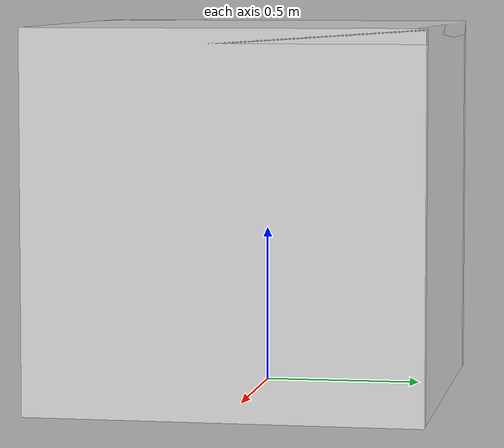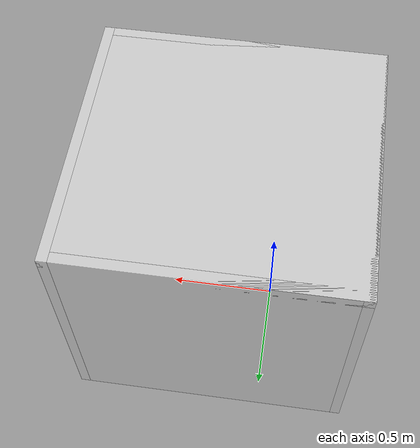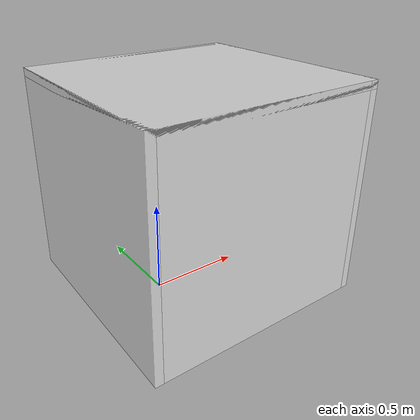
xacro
<?xml version="1.0"?>
<robot xmlns:xacro="http://www.ros.org/wiki/xacro" >

    <xacro:include filename="inertial_macros.xacro"/>

    <xacro:property name="width" value="1.215"/>
    <xacro:property name="length" value="1.260"/>
    <xacro:property name="height" value="1.170"/>

    <xacro:property name="wall_thickness" value="0.045"/>
    <xacro:property name="arm_offset" value="0.4"/>

    <material name="white">
        <color rgba="1 1 1 0.5" />
    </material>

    <!-- BASE LINK -->
    <link name="base_link">
    </link>

    <!-- KIOSK LINK -->

    <joint name="kiosk_joint" type="fixed">
        <parent link="base_link"/>
        <child link="kiosk"/>
        <origin xyz="${-arm_offset} 0 0"/>
    </joint>

    <link name="kiosk">
        <!-- Back wall -->
        <visual>
            <origin xyz="${wall_thickness/2} 0 ${height/2}"/>
            <geometry>
                <box size="${wall_thickness} ${width} ${height}"/>
            </geometry>
            <material name="white"/>
        </visual>
        <collision>
            <origin xyz="${wall_thickness/2} 0 ${height/2}"/>
            <geometry>
                <box size="${wall_thickness} ${width} ${height}"/>
            </geometry>
        </collision>
         <!-- Front wall -->
        <visual>
            <origin xyz="${length - wall_thickness/2} 0 ${height/2}"/>
            <geometry>
                <box size="${wall_thickness} ${width} ${height}"/>
            </geometry>
            <material name="white"/>
        </visual>
        <collision>
            <origin xyz="${length - wall_thickness/2} 0 ${height/2}"/>
            <geometry>
                <box size="${wall_thickness} ${width} ${height}"/>
            </geometry>
        </collision>
        <!-- Left wall -->
        <visual>
            <origin xyz="${length/2} ${width/2 - wall_thickness/2} ${height/2}"/>
            <geometry>
                <box size="${length - 2 * wall_thickness} ${wall_thickness} ${height}"/>
            </geometry>
            <material name="white"/>
        </visual>
        <collision>
            <origin xyz="${length/2} ${width/2 - wall_thickness/2} ${height/2}"/>
            <geometry>
                <box size="${length - 2 * wall_thickness} ${wall_thickness} ${height}"/>
            </geometry>
        </collision>
        <!-- Right wall -->
        <visual>
            <origin xyz="${length/2} ${-width/2 + wall_thickness/2} ${height/2}"/>
            <geometry>
                <box size="${length - 2*wall_thickness} ${wall_thickness} ${height}"/>
            </geometry>
            <material name="white"/>
        </visual>
        <collision>
            <origin xyz="${length/2} ${-width/2 + wall_thickness/2} ${height/2}"/>
            <geometry>
                <box size="${length - 2*wall_thickness} ${wall_thickness} ${height}"/>
            </geometry>
        </collision>
        <!-- Top wall -->
        <visual>
            <origin xyz="${length/2} 0 ${height - wall_thickness/2}"/>
            <geometry>
                <box size="${length} ${width} ${wall_thickness}"/>
            </geometry>
            <material name="white"/>
        </visual>

        <xacro:inertial_box mass="10" x="${length}" y="${width}" z="${height}">
            <origin xyz="${length/2} 0 ${height/2}" rpy="0 0 0"/>
        </xacro:inertial_box>
    </link>

    <gazebo reference="kiosk">
        <material>Gazebo/GreyTransparent</material>
    </gazebo>

</robot>
